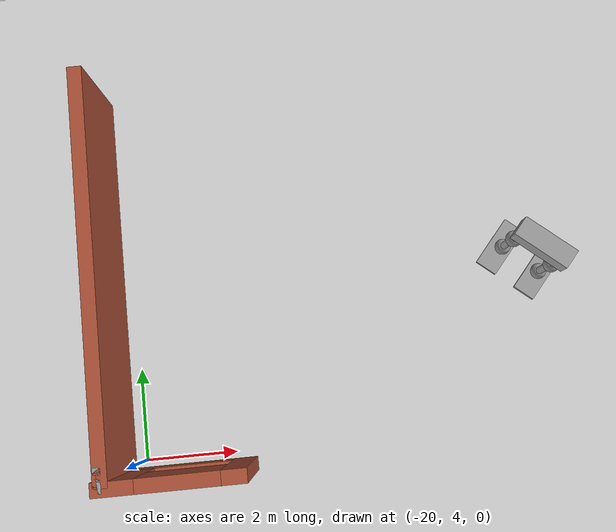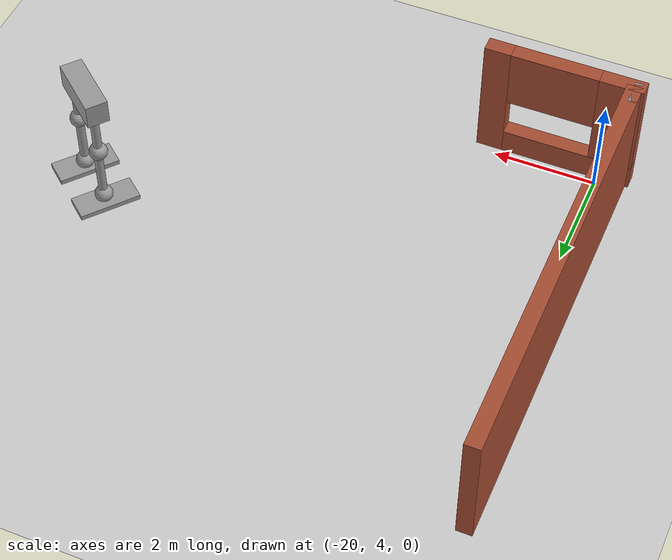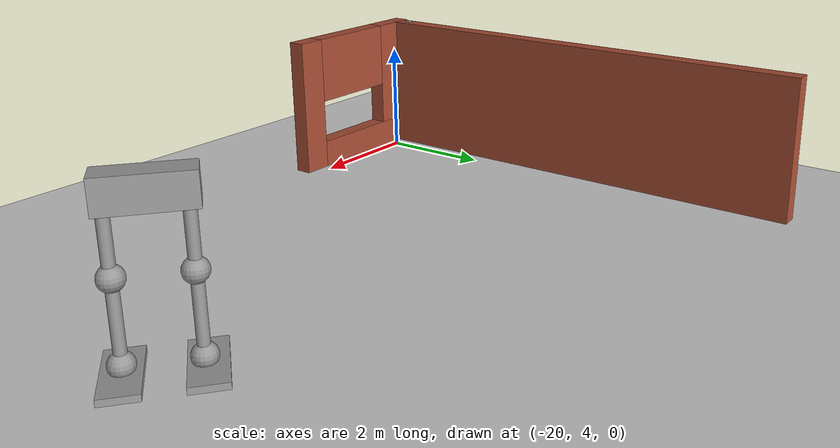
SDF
<sdf version="1.6">
 <world name="default">
  <model name="ground_plane">
   <static>1</static>
   <link name="link">
    <collision name="collision">
     <geometry><plane><normal>0 0 1</normal><size>100 100</size></plane></geometry>
     <surface><friction><ode><mu>100</mu><mu2>50</mu2></ode></friction></surface>
    </collision>
    <visual name="visual">
     <cast_shadows>0</cast_shadows>
     <geometry><plane><normal>0 0 1</normal><size>100 100</size></plane></geometry>
     <material>
      <script><uri>file://media/materials/scripts/gazebo.material</uri><name>Gazebo/Grey</name></script>
     </material>
    </visual>
   </link>
  </model>
  <model name="Building">
   <pose>-1.26631 -0.299272 0 0 -0 0</pose>
   <link name="Wall_17">
    <collision name="Wall_17_Collision">
     <geometry><box><size>8.49148 0.3 2.5</size></box></geometry>
     <pose>0 0 1.25 0 -0 0</pose>
    </collision>
    <visual name="Wall_17_Visual">
     <pose>0 0 1.25 0 -0 0</pose>
     <geometry><box><size>8.49148 0.3 2.5</size></box></geometry>
     <material>
      <script><uri>file://media/materials/scripts/gazebo.material</uri><name>Gazebo/Bricks</name></script>
      <ambient>1 1 1 1</ambient>
     </material>
     <meta><layer>0</layer></meta>
    </visual>
    <pose>-19.1444 8.2625 0 0 -0 1.5708</pose>
   </link>
   <link name="Wall_41">
    <pose>-17.825 3.99773 0 0 0 -3.14089</pose>
    <visual name="Wall_41_Visual_0">
     <pose>-1.26981 0 1.25 0 -0 0</pose>
     <geometry><box><size>0.515248 0.3 2.5</size></box></geometry>
     <material>
      <script><uri>file://media/materials/scripts/gazebo.material</uri><name>Gazebo/Bricks</name></script>
      <ambient>1 1 1 1</ambient>
     </material>
     <meta><layer>0</layer></meta>
    </visual>
    <collision name="Wall_41_Collision_0">
     <geometry><box><size>0.515248 0.3 2.5</size></box></geometry>
     <pose>-1.26981 0 1.25 0 -0 0</pose>
    </collision>
    <visual name="Wall_41_Visual_1">
     <pose>0.257624 0 0.25 0 -0 0</pose>
     <geometry><box><size>2.53962 0.3 0.5</size></box></geometry>
     <material>
      <script><uri>file://media/materials/scripts/gazebo.material</uri><name>Gazebo/Bricks</name></script>
      <ambient>1 1 1 1</ambient>
     </material>
     <meta><layer>0</layer></meta>
    </visual>
    <collision name="Wall_41_Collision_1">
     <geometry><box><size>2.53962 0.3 0.5</size></box></geometry>
     <pose>0.257624 0 0.25 0 -0 0</pose>
    </collision>
    <visual name="Wall_41_Visual_2">
     <pose>1.10217 0 1.5 0 -0 0</pose>
     <geometry><box><size>0.850518 0.3 2</size></box></geometry>
     <material>
      <script><uri>file://media/materials/scripts/gazebo.material</uri><name>Gazebo/Bricks</name></script>
      <ambient>1 1 1 1</ambient>
     </material>
     <meta><layer>0</layer></meta>
    </visual>
    <collision name="Wall_41_Collision_2">
     <geometry><box><size>0.850518 0.3 2</size></box></geometry>
     <pose>1.10217 0 1.5 0 -0 0</pose>
    </collision>
    <visual name="Wall_41_Visual_3">
     <pose>-0.167635 0 1.9 0 -0 0</pose>
     <geometry><box><size>1.6891 0.3 1.2</size></box></geometry>
     <material>
      <script><uri>file://media/materials/scripts/gazebo.material</uri><name>Gazebo/Bricks</name></script>
      <ambient>1 1 1 1</ambient>
     </material>
     <meta><layer>0</layer></meta>
    </visual>
    <collision name="Wall_41_Collision_3">
     <geometry><box><size>1.6891 0.3 1.2</size></box></geometry>
     <pose>-0.167635 0 1.9 0 -0 0</pose>
    </collision>
   </link>
   <link name="Wall_42">
    <collision name="Wall_42_Collision">
     <geometry><box><size>0.5 0.15 2.5</size></box></geometry>
     <pose>0 0 1.25 0 -0 0</pose>
    </collision>
    <visual name="Wall_42_Visual">
     <pose>0 0 1.25 0 -0 0</pose>
     <geometry><box><size>0.5 0.15 2.5</size></box></geometry>
     <material>
      <script><uri>file://media/materials/scripts/gazebo.material</uri><name>Gazebo/Grey</name></script>
      <ambient>1 1 1 1</ambient>
     </material>
     <meta><layer>0</layer></meta>
    </visual>
    <pose>-19.2024 4.1717 0 0 -0 1.57089</pose>
   </link>
   <link name="Wall_43">
    <collision name="Wall_43_Collision">
     <geometry><box><size>0.16 0.15 2.5</size></box></geometry>
     <pose>0 0 1.25 0 -0 0</pose>
    </collision>
    <visual name="Wall_43_Visual">
     <pose>0 0 1.25 0 -0 0</pose>
     <geometry><box><size>0.16 0.15 2.5</size></box></geometry>
     <material>
      <script><uri>file://media/materials/scripts/gazebo.material</uri><name>Gazebo/Grey</name></script>
      <ambient>1 1 1 1</ambient>
     </material>
     <meta><layer>0</layer></meta>
    </visual>
    <pose>-19.1974 4.34664 0 0 -0 0</pose>
   </link>
   <static>1</static>
  </model>
  <model name="Humanoid2_0">
   <link name="link_0">
    <pose>5.79772 -1.97955 0.05 0 -0 0</pose>
    <inertial>
     <mass>0.06046</mass>
     <inertia>
      <ixx>0.00720686</ixx>
      <ixy>0</ixy>
      <ixz>0</ixz>
      <iyy>0.00137814</iyy>
      <iyz>0</iyz>
      <izz>0.00848671</izz>
     </inertia>
    </inertial>
    <visual name="visual">
     <geometry><box><size>0.513593 1.19191 0.098763</size></box></geometry>
     <material>
      <lighting>1</lighting>
      <script><uri>file://media/materials/scripts/gazebo.material</uri><name>Gazebo/Grey</name></script>
      <shader type="pixel"><normal_map>__default__</normal_map></shader>
      <ambient>0.3 0.3 0.3 1</ambient>
      <diffuse>0.7 0.7 0.7 1</diffuse>
      <specular>0.01 0.01 0.01 1</specular>
      <emissive>0 0 0 1</emissive>
     </material>
    </visual>
    <collision name="collision">
     <geometry><box><size>0.513593 1.19191 0.098763</size></box></geometry>
     <surface>
      <friction>
       <ode><mu>1</mu><mu2>1</mu2><fdir1>0 0 0</fdir1><slip1>0</slip1><slip2>0</slip2></ode>
       <torsional>
        <coefficient>1</coefficient>
        <patch_radius>0</patch_radius>
        <surface_radius>0</surface_radius>
        <use_patch_radius>1</use_patch_radius>
        <ode><slip>0</slip></ode>
       </torsional>
      </friction>
      <bounce><restitution_coefficient>0</restitution_coefficient><threshold>1e+06</threshold></bounce>
      <contact>
       <collide_without_contact>0</collide_without_contact>
       <collide_without_contact_bitmask>1</collide_without_contact_bitmask>
       <collide_bitmask>1</collide_bitmask>
       <ode>
        <soft_cfm>0</soft_cfm>
        <soft_erp>0.2</soft_erp>
        <kp>1e+13</kp>
        <kd>1</kd>
        <max_vel>0.01</max_vel>
        <min_depth>0</min_depth>
       </ode>
       <bullet>
        <split_impulse>1</split_impulse>
        <split_impulse_penetration_threshold>-0.01</split_impulse_penetration_threshold>
        <soft_cfm>0</soft_cfm>
        <soft_erp>0.2</soft_erp>
        <kp>1e+13</kp>
        <kd>1</kd>
       </bullet>
      </contact>
     </surface>
    </collision>
   </link>
   <link name="link_0_clone">
    <pose>4.78369 -1.98069 0.05 0 -0 0</pose>
    <inertial>
     <mass>0.06046</mass>
     <inertia>
      <ixx>0.00720686</ixx>
      <ixy>0</ixy>
      <ixz>0</ixz>
      <iyy>0.00137814</iyy>
      <iyz>0</iyz>
      <izz>0.00848671</izz>
     </inertia>
    </inertial>
    <visual name="visual">
     <geometry><box><size>0.513593 1.19191 0.098763</size></box></geometry>
     <material>
      <lighting>1</lighting>
      <script><uri>file://media/materials/scripts/gazebo.material</uri><name>Gazebo/Grey</name></script>
      <shader type="pixel"><normal_map>__default__</normal_map></shader>
      <ambient>0.3 0.3 0.3 1</ambient>
      <diffuse>0.7 0.7 0.7 1</diffuse>
      <specular>0.01 0.01 0.01 1</specular>
      <emissive>0 0 0 1</emissive>
     </material>
    </visual>
    <collision name="collision">
     <geometry><box><size>0.513593 1.19191 0.098763</size></box></geometry>
     <surface>
      <friction>
       <ode><mu>1</mu><mu2>1</mu2><fdir1>0 0 0</fdir1><slip1>0</slip1><slip2>0</slip2></ode>
       <torsional>
        <coefficient>1</coefficient>
        <patch_radius>0</patch_radius>
        <surface_radius>0</surface_radius>
        <use_patch_radius>1</use_patch_radius>
        <ode><slip>0</slip></ode>
       </torsional>
      </friction>
      <bounce><restitution_coefficient>0</restitution_coefficient><threshold>1e+06</threshold></bounce>
      <contact>
       <collide_without_contact>0</collide_without_contact>
       <collide_without_contact_bitmask>1</collide_without_contact_bitmask>
       <collide_bitmask>1</collide_bitmask>
       <ode>
        <soft_cfm>0</soft_cfm>
        <soft_erp>0.2</soft_erp>
        <kp>1e+13</kp>
        <kd>1</kd>
        <max_vel>0.01</max_vel>
        <min_depth>0</min_depth>
       </ode>
       <bullet>
        <split_impulse>1</split_impulse>
        <split_impulse_penetration_threshold>-0.01</split_impulse_penetration_threshold>
        <soft_cfm>0</soft_cfm>
        <soft_erp>0.2</soft_erp>
        <kp>1e+13</kp>
        <kd>1</kd>
       </bullet>
      </contact>
     </surface>
    </collision>
   </link>
   <link name="link_1">
    <pose>5.78776 -1.98521 0.184527 0 -0 0</pose>
    <inertial>
     <mass>0.0436597</mass>
     <inertia>
      <ixx>0.000541334</ixx>
      <ixy>0</ixy>
      <ixz>0</ixz>
      <iyy>0.000541334</iyy>
      <iyz>0</iyz>
      <izz>0.000541334</izz>
     </inertia>
    </inertial>
    <visual name="visual">
     <geometry><sphere><radius>0.176061</radius></sphere></geometry>
     <material>
      <lighting>1</lighting>
      <script><uri>file://media/materials/scripts/gazebo.material</uri><name>Gazebo/Grey</name></script>
      <shader type="pixel"/>
      <ambient>0.3 0.3 0.3 1</ambient>
      <diffuse>0.7 0.7 0.7 1</diffuse>
      <specular>0.01 0.01 0.01 1</specular>
      <emissive>0 0 0 1</emissive>
     </material>
    </visual>
    <collision name="collision">
     <geometry><sphere><radius>0.176061</radius></sphere></geometry>
     <surface>
      <friction>
       <ode><mu>1</mu><mu2>1</mu2><fdir1>0 0 0</fdir1><slip1>0</slip1><slip2>0</slip2></ode>
       <torsional>
        <coefficient>1</coefficient>
        <patch_radius>0</patch_radius>
        <surface_radius>0</surface_radius>
        <use_patch_radius>1</use_patch_radius>
        <ode><slip>0</slip></ode>
       </torsional>
      </friction>
      <bounce><restitution_coefficient>0</restitution_coefficient><threshold>1e+06</threshold></bounce>
      <contact>
       <collide_without_contact>0</collide_without_contact>
       <collide_without_contact_bitmask>1</collide_without_contact_bitmask>
       <collide_bitmask>1</collide_bitmask>
       <ode>
        <soft_cfm>0</soft_cfm>
        <soft_erp>0.2</soft_erp>
        <kp>1e+13</kp>
        <kd>1</kd>
        <max_vel>0.01</max_vel>
        <min_depth>0</min_depth>
       </ode>
       <bullet>
        <split_impulse>1</split_impulse>
        <split_impulse_penetration_threshold>-0.01</split_impulse_penetration_threshold>
        <soft_cfm>0</soft_cfm>
        <soft_erp>0.2</soft_erp>
        <kp>1e+13</kp>
        <kd>1</kd>
       </bullet>
      </contact>
     </surface>
    </collision>
   </link>
   <link name="link_1_clone">
    <pose>5.78609 -1.99189 1.31349 0 -0 0</pose>
    <inertial>
     <mass>0.0436597</mass>
     <inertia>
      <ixx>0.000541334</ixx>
      <ixy>0</ixy>
      <ixz>0</ixz>
      <iyy>0.000541334</iyy>
      <iyz>0</iyz>
      <izz>0.000541334</izz>
     </inertia>
    </inertial>
    <visual name="visual">
     <geometry><sphere><radius>0.176061</radius></sphere></geometry>
     <material>
      <lighting>1</lighting>
      <script><uri>file://media/materials/scripts/gazebo.material</uri><name>Gazebo/Grey</name></script>
      <shader type="pixel"/>
      <ambient>0.3 0.3 0.3 1</ambient>
      <diffuse>0.7 0.7 0.7 1</diffuse>
      <specular>0.01 0.01 0.01 1</specular>
      <emissive>0 0 0 1</emissive>
     </material>
    </visual>
    <collision name="collision">
     <geometry><sphere><radius>0.176061</radius></sphere></geometry>
     <surface>
      <friction>
       <ode><mu>1</mu><mu2>1</mu2><fdir1>0 0 0</fdir1><slip1>0</slip1><slip2>0</slip2></ode>
       <torsional>
        <coefficient>1</coefficient>
        <patch_radius>0</patch_radius>
        <surface_radius>0</surface_radius>
        <use_patch_radius>1</use_patch_radius>
        <ode><slip>0</slip></ode>
       </torsional>
      </friction>
      <bounce><restitution_coefficient>0</restitution_coefficient><threshold>1e+06</threshold></bounce>
      <contact>
       <collide_without_contact>0</collide_without_contact>
       <collide_without_contact_bitmask>1</collide_without_contact_bitmask>
       <collide_bitmask>1</collide_bitmask>
       <ode>
        <soft_cfm>0</soft_cfm>
        <soft_erp>0.2</soft_erp>
        <kp>1e+13</kp>
        <kd>1</kd>
        <max_vel>0.01</max_vel>
        <min_depth>0</min_depth>
       </ode>
       <bullet>
        <split_impulse>1</split_impulse>
        <split_impulse_penetration_threshold>-0.01</split_impulse_penetration_threshold>
        <soft_cfm>0</soft_cfm>
        <soft_erp>0.2</soft_erp>
        <kp>1e+13</kp>
        <kd>1</kd>
       </bullet>
      </contact>
     </surface>
    </collision>
   </link>
   <link name="link_1_clone_0">
    <pose>4.81912 -1.97367 0.184527 0 -0 0</pose>
    <inertial>
     <mass>0.0436597</mass>
     <inertia>
      <ixx>0.000541334</ixx>
      <ixy>0</ixy>
      <ixz>0</ixz>
      <iyy>0.000541334</iyy>
      <iyz>0</iyz>
      <izz>0.000541334</izz>
     </inertia>
    </inertial>
    <visual name="visual">
     <geometry><sphere><radius>0.176061</radius></sphere></geometry>
     <material>
      <lighting>1</lighting>
      <script><uri>file://media/materials/scripts/gazebo.material</uri><name>Gazebo/Grey</name></script>
      <shader type="pixel"/>
      <ambient>0.3 0.3 0.3 1</ambient>
      <diffuse>0.7 0.7 0.7 1</diffuse>
      <specular>0.01 0.01 0.01 1</specular>
      <emissive>0 0 0 1</emissive>
     </material>
    </visual>
    <collision name="collision">
     <geometry><sphere><radius>0.176061</radius></sphere></geometry>
     <surface>
      <friction>
       <ode><mu>1</mu><mu2>1</mu2><fdir1>0 0 0</fdir1><slip1>0</slip1><slip2>0</slip2></ode>
       <torsional>
        <coefficient>1</coefficient>
        <patch_radius>0</patch_radius>
        <surface_radius>0</surface_radius>
        <use_patch_radius>1</use_patch_radius>
        <ode><slip>0</slip></ode>
       </torsional>
      </friction>
      <bounce><restitution_coefficient>0</restitution_coefficient><threshold>1e+06</threshold></bounce>
      <contact>
       <collide_without_contact>0</collide_without_contact>
       <collide_without_contact_bitmask>1</collide_without_contact_bitmask>
       <collide_bitmask>1</collide_bitmask>
       <ode>
        <soft_cfm>0</soft_cfm>
        <soft_erp>0.2</soft_erp>
        <kp>1e+13</kp>
        <kd>1</kd>
        <max_vel>0.01</max_vel>
        <min_depth>0</min_depth>
       </ode>
       <bullet>
        <split_impulse>1</split_impulse>
        <split_impulse_penetration_threshold>-0.01</split_impulse_penetration_threshold>
        <soft_cfm>0</soft_cfm>
        <soft_erp>0.2</soft_erp>
        <kp>1e+13</kp>
        <kd>1</kd>
       </bullet>
      </contact>
     </surface>
    </collision>
   </link>
   <link name="link_1_clone_clone_0">
    <pose>4.82981 -1.98574 1.31349 0 -0 0</pose>
    <inertial>
     <mass>0.0436597</mass>
     <inertia>
      <ixx>0.000541334</ixx>
      <ixy>0</ixy>
      <ixz>0</ixz>
      <iyy>0.000541334</iyy>
      <iyz>0</iyz>
      <izz>0.000541334</izz>
     </inertia>
    </inertial>
    <visual name="visual">
     <geometry><sphere><radius>0.176061</radius></sphere></geometry>
     <material>
      <lighting>1</lighting>
      <script><uri>file://media/materials/scripts/gazebo.material</uri><name>Gazebo/Grey</name></script>
      <shader type="pixel"/>
      <ambient>0.3 0.3 0.3 1</ambient>
      <diffuse>0.7 0.7 0.7 1</diffuse>
      <specular>0.01 0.01 0.01 1</specular>
      <emissive>0 0 0 1</emissive>
     </material>
    </visual>
    <collision name="collision">
     <geometry><sphere><radius>0.176061</radius></sphere></geometry>
     <surface>
      <friction>
       <ode><mu>1</mu><mu2>1</mu2><fdir1>0 0 0</fdir1><slip1>0</slip1><slip2>0</slip2></ode>
       <torsional>
        <coefficient>1</coefficient>
        <patch_radius>0</patch_radius>
        <surface_radius>0</surface_radius>
        <use_patch_radius>1</use_patch_radius>
        <ode><slip>0</slip></ode>
       </torsional>
      </friction>
      <bounce><restitution_coefficient>0</restitution_coefficient><threshold>1e+06</threshold></bounce>
      <contact>
       <collide_without_contact>0</collide_without_contact>
       <collide_without_contact_bitmask>1</collide_without_contact_bitmask>
       <collide_bitmask>1</collide_bitmask>
       <ode>
        <soft_cfm>0</soft_cfm>
        <soft_erp>0.2</soft_erp>
        <kp>1e+13</kp>
        <kd>1</kd>
        <max_vel>0.01</max_vel>
        <min_depth>0</min_depth>
       </ode>
       <bullet>
        <split_impulse>1</split_impulse>
        <split_impulse_penetration_threshold>-0.01</split_impulse_penetration_threshold>
        <soft_cfm>0</soft_cfm>
        <soft_erp>0.2</soft_erp>
        <kp>1e+13</kp>
        <kd>1</kd>
       </bullet>
      </contact>
     </surface>
    </collision>
   </link>
   <link name="link_2">
    <pose>5.78656 -1.98911 0.758077 0 -0 0</pose>
    <inertial>
     <mass>0.0281952</mass>
     <inertia>
      <ixx>0.00239929</ixx>
      <ixy>0</ixy>
      <ixz>0</ixz>
      <iyy>0.00239929</iyy>
      <iyz>0</iyz>
      <izz>9.93738e-05</izz>
     </inertia>
    </inertial>
    <visual name="visual">
     <geometry><cylinder><radius>0.0839582</radius><length>1</length></cylinder></geometry>
     <material>
      <lighting>1</lighting>
      <script><uri>file://media/materials/scripts/gazebo.material</uri><name>Gazebo/Grey</name></script>
      <shader type="pixel"/>
      <ambient>0.3 0.3 0.3 1</ambient>
      <diffuse>0.7 0.7 0.7 1</diffuse>
      <specular>0.01 0.01 0.01 1</specular>
      <emissive>0 0 0 1</emissive>
     </material>
    </visual>
    <collision name="collision">
     <geometry><cylinder><radius>0.083958</radius><length>1</length></cylinder></geometry>
     <surface>
      <friction>
       <ode><mu>1</mu><mu2>1</mu2><fdir1>0 0 0</fdir1><slip1>0</slip1><slip2>0</slip2></ode>
       <torsional>
        <coefficient>1</coefficient>
        <patch_radius>0</patch_radius>
        <surface_radius>0</surface_radius>
        <use_patch_radius>1</use_patch_radius>
        <ode><slip>0</slip></ode>
       </torsional>
      </friction>
      <bounce><restitution_coefficient>0</restitution_coefficient><threshold>1e+06</threshold></bounce>
      <contact>
       <collide_without_contact>0</collide_without_contact>
       <collide_without_contact_bitmask>1</collide_without_contact_bitmask>
       <collide_bitmask>1</collide_bitmask>
       <ode>
        <soft_cfm>0</soft_cfm>
        <soft_erp>0.2</soft_erp>
        <kp>1e+13</kp>
        <kd>1</kd>
        <max_vel>0.01</max_vel>
        <min_depth>0</min_depth>
       </ode>
       <bullet>
        <split_impulse>1</split_impulse>
        <split_impulse_penetration_threshold>-0.01</split_impulse_penetration_threshold>
        <soft_cfm>0</soft_cfm>
        <soft_erp>0.2</soft_erp>
        <kp>1e+13</kp>
        <kd>1</kd>
       </bullet>
      </contact>
     </surface>
    </collision>
   </link>
   <link name="link_2_clone">
    <pose>5.79309 -1.99682 1.88288 0 -0 0</pose>
    <inertial>
     <mass>0.0281952</mass>
     <inertia>
      <ixx>0.00239929</ixx>
      <ixy>0</ixy>
      <ixz>0</ixz>
      <iyy>0.00239929</iyy>
      <iyz>0</iyz>
      <izz>9.93738e-05</izz>
     </inertia>
    </inertial>
    <visual name="visual">
     <geometry><cylinder><radius>0.0839582</radius><length>1</length></cylinder></geometry>
     <material>
      <lighting>1</lighting>
      <script><uri>file://media/materials/scripts/gazebo.material</uri><name>Gazebo/Grey</name></script>
      <shader type="pixel"/>
      <ambient>0.3 0.3 0.3 1</ambient>
      <diffuse>0.7 0.7 0.7 1</diffuse>
      <specular>0.01 0.01 0.01 1</specular>
      <emissive>0 0 0 1</emissive>
     </material>
    </visual>
    <collision name="collision">
     <geometry><cylinder><radius>0.083958</radius><length>1</length></cylinder></geometry>
     <surface>
      <friction>
       <ode><mu>1</mu><mu2>1</mu2><fdir1>0 0 0</fdir1><slip1>0</slip1><slip2>0</slip2></ode>
       <torsional>
        <coefficient>1</coefficient>
        <patch_radius>0</patch_radius>
        <surface_radius>0</surface_radius>
        <use_patch_radius>1</use_patch_radius>
        <ode><slip>0</slip></ode>
       </torsional>
      </friction>
      <bounce><restitution_coefficient>0</restitution_coefficient><threshold>1e+06</threshold></bounce>
      <contact>
       <collide_without_contact>0</collide_without_contact>
       <collide_without_contact_bitmask>1</collide_without_contact_bitmask>
       <collide_bitmask>1</collide_bitmask>
       <ode>
        <soft_cfm>0</soft_cfm>
        <soft_erp>0.2</soft_erp>
        <kp>1e+13</kp>
        <kd>1</kd>
        <max_vel>0.01</max_vel>
        <min_depth>0</min_depth>
       </ode>
       <bullet>
        <split_impulse>1</split_impulse>
        <split_impulse_penetration_threshold>-0.01</split_impulse_penetration_threshold>
        <soft_cfm>0</soft_cfm>
        <soft_erp>0.2</soft_erp>
        <kp>1e+13</kp>
        <kd>1</kd>
       </bullet>
      </contact>
     </surface>
    </collision>
   </link>
   <link name="link_2_clone_0">
    <pose>4.82328 -1.96972 0.758077 0 -0 0</pose>
    <inertial>
     <mass>0.0281952</mass>
     <inertia>
      <ixx>0.00239929</ixx>
      <ixy>0</ixy>
      <ixz>0</ixz>
      <iyy>0.00239929</iyy>
      <iyz>0</iyz>
      <izz>9.93738e-05</izz>
     </inertia>
    </inertial>
    <visual name="visual">
     <geometry><cylinder><radius>0.0839582</radius><length>1</length></cylinder></geometry>
     <material>
      <lighting>1</lighting>
      <script><uri>file://media/materials/scripts/gazebo.material</uri><name>Gazebo/Grey</name></script>
      <shader type="pixel"/>
      <ambient>0.3 0.3 0.3 1</ambient>
      <diffuse>0.7 0.7 0.7 1</diffuse>
      <specular>0.01 0.01 0.01 1</specular>
      <emissive>0 0 0 1</emissive>
     </material>
    </visual>
    <collision name="collision">
     <geometry><cylinder><radius>0.083958</radius><length>1</length></cylinder></geometry>
     <surface>
      <friction>
       <ode><mu>1</mu><mu2>1</mu2><fdir1>0 0 0</fdir1><slip1>0</slip1><slip2>0</slip2></ode>
       <torsional>
        <coefficient>1</coefficient>
        <patch_radius>0</patch_radius>
        <surface_radius>0</surface_radius>
        <use_patch_radius>1</use_patch_radius>
        <ode><slip>0</slip></ode>
       </torsional>
      </friction>
      <bounce><restitution_coefficient>0</restitution_coefficient><threshold>1e+06</threshold></bounce>
      <contact>
       <collide_without_contact>0</collide_without_contact>
       <collide_without_contact_bitmask>1</collide_without_contact_bitmask>
       <collide_bitmask>1</collide_bitmask>
       <ode>
        <soft_cfm>0</soft_cfm>
        <soft_erp>0.2</soft_erp>
        <kp>1e+13</kp>
        <kd>1</kd>
        <max_vel>0.01</max_vel>
        <min_depth>0</min_depth>
       </ode>
       <bullet>
        <split_impulse>1</split_impulse>
        <split_impulse_penetration_threshold>-0.01</split_impulse_penetration_threshold>
        <soft_cfm>0</soft_cfm>
        <soft_erp>0.2</soft_erp>
        <kp>1e+13</kp>
        <kd>1</kd>
       </bullet>
      </contact>
     </surface>
    </collision>
   </link>
   <link name="link_2_clone_clone">
    <pose>4.82782 -1.98664 1.88288 0 -0 0</pose>
    <inertial>
     <mass>0.0281952</mass>
     <inertia>
      <ixx>0.00239929</ixx>
      <ixy>0</ixy>
      <ixz>0</ixz>
      <iyy>0.00239929</iyy>
      <iyz>0</iyz>
      <izz>9.93738e-05</izz>
     </inertia>
    </inertial>
    <visual name="visual">
     <geometry><cylinder><radius>0.0839582</radius><length>1</length></cylinder></geometry>
     <material>
      <lighting>1</lighting>
      <script><uri>file://media/materials/scripts/gazebo.material</uri><name>Gazebo/Grey</name></script>
      <shader type="pixel"/>
      <ambient>0.3 0.3 0.3 1</ambient>
      <diffuse>0.7 0.7 0.7 1</diffuse>
      <specular>0.01 0.01 0.01 1</specular>
      <emissive>0 0 0 1</emissive>
     </material>
    </visual>
    <collision name="collision">
     <geometry><cylinder><radius>0.083958</radius><length>1</length></cylinder></geometry>
     <surface>
      <friction>
       <ode><mu>1</mu><mu2>1</mu2><fdir1>0 0 0</fdir1><slip1>0</slip1><slip2>0</slip2></ode>
       <torsional>
        <coefficient>1</coefficient>
        <patch_radius>0</patch_radius>
        <surface_radius>0</surface_radius>
        <use_patch_radius>1</use_patch_radius>
        <ode><slip>0</slip></ode>
       </torsional>
      </friction>
      <bounce><restitution_coefficient>0</restitution_coefficient><threshold>1e+06</threshold></bounce>
      <contact>
       <collide_without_contact>0</collide_without_contact>
       <collide_without_contact_bitmask>1</collide_without_contact_bitmask>
       <collide_bitmask>1</collide_bitmask>
       <ode>
        <soft_cfm>0</soft_cfm>
        <soft_erp>0.2</soft_erp>
        <kp>1e+13</kp>
        <kd>1</kd>
        <max_vel>0.01</max_vel>
        <min_depth>0</min_depth>
       </ode>
       <bullet>
        <split_impulse>1</split_impulse>
        <split_impulse_penetration_threshold>-0.01</split_impulse_penetration_threshold>
        <soft_cfm>0</soft_cfm>
        <soft_erp>0.2</soft_erp>
        <kp>1e+13</kp>
        <kd>1</kd>
       </bullet>
      </contact>
     </surface>
    </collision>
   </link>
   <link name="link_3">
    <pose>5.29594 -2.02732 2.37324 0 -0 0</pose>
    <inertial>
     <mass>0.249231</mass>
     <inertia>
      <ixx>0.00849422</ixx>
      <ixy>0</ixy>
      <ixz>0</ixz>
      <iyy>0.0360264</iyy>
      <iyz>0</iyz>
      <izz>0.0350307</izz>
     </inertia>
    </inertial>
    <visual name="visual">
     <geometry><box><size>1.22725 0.424878 0.477974</size></box></geometry>
     <material>
      <lighting>1</lighting>
      <script><uri>file://media/materials/scripts/gazebo.material</uri><name>Gazebo/Grey</name></script>
      <shader type="pixel"><normal_map>__default__</normal_map></shader>
      <ambient>0.3 0.3 0.3 1</ambient>
      <diffuse>0.7 0.7 0.7 1</diffuse>
      <specular>0.01 0.01 0.01 1</specular>
      <emissive>0 0 0 1</emissive>
     </material>
    </visual>
    <collision name="collision">
     <geometry><box><size>1.22725 0.424878 0.477974</size></box></geometry>
     <surface>
      <friction>
       <ode><mu>1</mu><mu2>1</mu2><fdir1>0 0 0</fdir1><slip1>0</slip1><slip2>0</slip2></ode>
       <torsional>
        <coefficient>1</coefficient>
        <patch_radius>0</patch_radius>
        <surface_radius>0</surface_radius>
        <use_patch_radius>1</use_patch_radius>
        <ode><slip>0</slip></ode>
       </torsional>
      </friction>
      <bounce><restitution_coefficient>0</restitution_coefficient><threshold>1e+06</threshold></bounce>
      <contact>
       <collide_without_contact>0</collide_without_contact>
       <collide_without_contact_bitmask>1</collide_without_contact_bitmask>
       <collide_bitmask>1</collide_bitmask>
       <ode>
        <soft_cfm>0</soft_cfm>
        <soft_erp>0.2</soft_erp>
        <kp>1e+13</kp>
        <kd>1</kd>
        <max_vel>0.01</max_vel>
        <min_depth>0</min_depth>
       </ode>
       <bullet>
        <split_impulse>1</split_impulse>
        <split_impulse_penetration_threshold>-0.01</split_impulse_penetration_threshold>
        <soft_cfm>0</soft_cfm>
        <soft_erp>0.2</soft_erp>
        <kp>1e+13</kp>
        <kd>1</kd>
       </bullet>
      </contact>
     </surface>
    </collision>
   </link>
   <joint name="link_1_JOINT_9" type="fixed">
    <parent>link_1</parent>
    <child>link_0</child>
    <physics>
     <ode><limit><cfm>0</cfm><erp>0.2</erp></limit><suspension><cfm>0</cfm><erp>0.2</erp></suspension></ode>
    </physics>
   </joint>
   <joint name="link_1_clone_0_JOINT_8" type="fixed">
    <parent>link_1_clone_0</parent>
    <child>link_0_clone</child>
    <physics>
     <ode><limit><cfm>0</cfm><erp>0.2</erp></limit><suspension><cfm>0</cfm><erp>0.2</erp></suspension></ode>
    </physics>
   </joint>
   <joint name="link_1_clone_JOINT_5" type="fixed">
    <parent>link_1_clone</parent>
    <child>link_2</child>
    <physics>
     <ode><limit><cfm>0</cfm><erp>0.2</erp></limit><suspension><cfm>0</cfm><erp>0.2</erp></suspension></ode>
    </physics>
   </joint>
   <joint name="link_1_clone_clone_0_JOINT_4" type="fixed">
    <parent>link_1_clone_clone_0</parent>
    <child>link_2_clone_0</child>
    <physics>
     <ode><limit><cfm>0</cfm><erp>0.2</erp></limit><suspension><cfm>0</cfm><erp>0.2</erp></suspension></ode>
    </physics>
   </joint>
   <joint name="link_2_JOINT_7" type="fixed">
    <parent>link_2</parent>
    <child>link_1</child>
    <physics>
     <ode><limit><cfm>0</cfm><erp>0.2</erp></limit><suspension><cfm>0</cfm><erp>0.2</erp></suspension></ode>
    </physics>
   </joint>
   <joint name="link_2_clone_0_JOINT_6" type="fixed">
    <parent>link_2_clone_0</parent>
    <child>link_1_clone_0</child>
    <physics>
     <ode><limit><cfm>0</cfm><erp>0.2</erp></limit><suspension><cfm>0</cfm><erp>0.2</erp></suspension></ode>
    </physics>
   </joint>
   <joint name="link_2_clone_JOINT_3" type="fixed">
    <parent>link_2_clone</parent>
    <child>link_1_clone</child>
    <physics>
     <ode><limit><cfm>0</cfm><erp>0.2</erp></limit><suspension><cfm>0</cfm><erp>0.2</erp></suspension></ode>
    </physics>
   </joint>
   <joint name="link_2_clone_clone_JOINT_2" type="fixed">
    <parent>link_2_clone_clone</parent>
    <child>link_1_clone_clone_0</child>
    <physics>
     <ode><limit><cfm>0</cfm><erp>0.2</erp></limit><suspension><cfm>0</cfm><erp>0.2</erp></suspension></ode>
    </physics>
   </joint>
   <joint name="link_3_JOINT_0" type="fixed">
    <parent>link_3</parent>
    <child>link_2_clone_clone</child>
    <physics>
     <ode><limit><cfm>0</cfm><erp>0.2</erp></limit><suspension><cfm>0</cfm><erp>0.2</erp></suspension></ode>
    </physics>
   </joint>
   <joint name="link_3_JOINT_1" type="fixed">
    <parent>link_3</parent>
    <child>link_2_clone</child>
    <physics>
     <ode><limit><cfm>0</cfm><erp>0.2</erp></limit><suspension><cfm>0</cfm><erp>0.2</erp></suspension></ode>
    </physics>
   </joint>
   <static>0</static>
   <pose>-14.0324 12.5955 -0.000557 3.6e-05 2e-06 -0.696951</pose>
  </model>
 </world>
</sdf>
